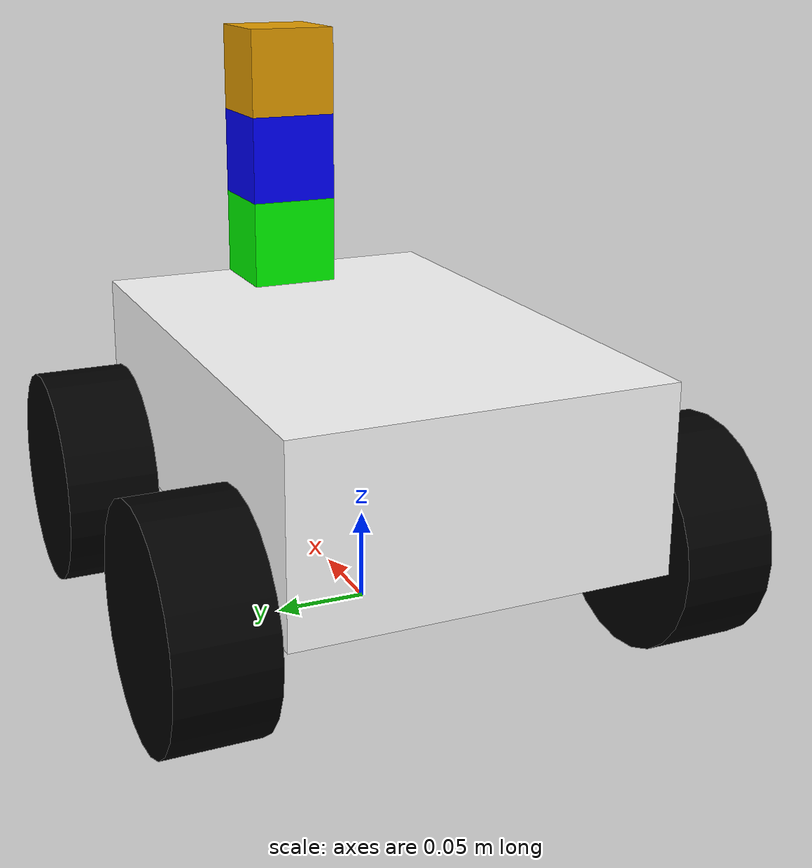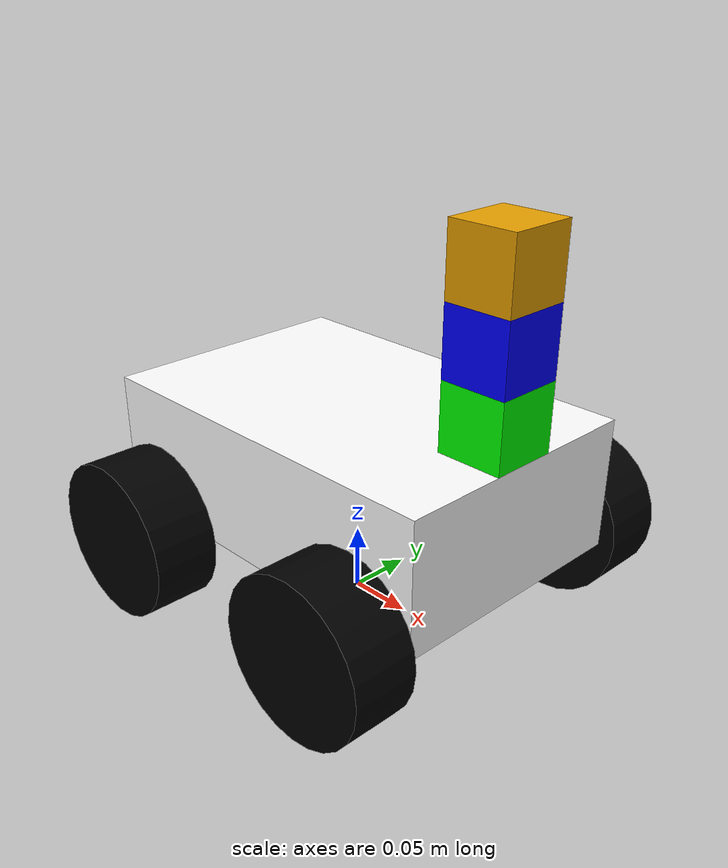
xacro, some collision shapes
<?xml version="1.0"?>

<robot name="robot" xmlns:xacro="http://www.ros.org/wiki/xacro">

	<xacro:property name="length_wheel" value="0.05" />
	<xacro:property name="radius_wheel" value="0.06" />
	<xacro:property name="camera_link" value="0.05" />
  <xacro:property name="PI" value="3.1415926"/>
	<xacro:macro name="default_inertial" params="mass">
               <inertial>
                       <mass value="${mass}" />
                       <inertia ixx="0.1" ixy="0.0"
                                ixz="0.0"
                                iyy="0.1" iyz="0.0"
                                izz="0.1" />
               </inertial>
	</xacro:macro>
	<link name="base_footprint">
   		<visual>
			<geometry>
      				<box size="0.001 0.001 0.001"/>
     			</geometry>
			<origin rpy="0 0 0" xyz="0 0 0"/>
   		</visual>
		<xacro:default_inertial mass="0.0001"/>
 	</link>

	<gazebo reference="base_footprint">
		<material>Gazebo/Green</material>
		<turnGravityOff>false</turnGravityOff>
	</gazebo>

	<joint name="base_footprint_joint" type="fixed">
    <origin xyz="0 0 0.06" />  <!-- 当前是0，应该设置为0.06 -->
    <parent link="base_footprint" />
    <child link="base_link" />
</joint>

	<link name="base_link">
   		<visual>
			<geometry>
      				<box size="0.2 .3 .1"/>
     			</geometry>
			<origin rpy="0 0 ${PI/2}" xyz="0 0 0.05"/>
			<material name="white">　　　
				<color rgba="1 1 1 1"/>
			</material>
   		</visual>
		<collision>
			<geometry>
       				<box size="0.2 .3 0.1"/>
			</geometry>
		</collision>
                <xacro:default_inertial mass="8.2"/>
 	</link>

 	<link name="wheel_1">
   		<visual>
     			<geometry>
       				<cylinder length="${length_wheel}" radius="${radius_wheel}"/>
     			</geometry>
			<origin rpy="0 0 0" xyz="0 0 0"/>
   			<material name="black">
				<color rgba="0 0 0 1"/>
			</material>
		</visual>
		<collision>
			<geometry>
       				<cylinder length="${length_wheel}" radius="${radius_wheel}"/>
			</geometry>
		</collision>
		  <mu1>0.5</mu1>
		    <mu2>0.5</mu2>
		<xacro:default_inertial mass="0.5"/>
 	</link>

 	<link name="wheel_2">
   		<visual>
     			<geometry>
       				<cylinder length="${length_wheel}" radius="${radius_wheel}"/>
     			</geometry>
			<origin rpy="0 0 0" xyz="0 0 0"/>
   			<material name="black"/>
        <color rgba="0 0 0 1"/>
   		</visual>
		<collision>
			<geometry>
       				<cylinder length="${length_wheel}" radius="${radius_wheel}"/>
			</geometry>
		</collision>
		   <mu1>0.5</mu1>
		    <mu2>0.5</mu2>
		<xacro:default_inertial mass="0.5"/>

 	</link>

 	<link name="wheel_3">
   		<visual>
     			<geometry>
       				<cylinder length="${length_wheel}" radius="${radius_wheel}"/>
     			</geometry>

			<origin rpy="0 0 0" xyz="0 0 0"/>
   			<material name="black"/>
   		</visual>
		<collision>
			<geometry>
       				<cylinder length="${length_wheel}" radius="${radius_wheel}"/>
			</geometry>
		</collision>
		 <mu1>0.5</mu1>
		    <mu2>0.5</mu2>
		<xacro:default_inertial mass="0.5"/>
 	</link>

 	<link name="wheel_4">
   		<visual>
     			<geometry>
       				<cylinder length="${length_wheel}" radius="${radius_wheel}"/>
     			</geometry>
			<origin rpy="0 0 0" xyz="0 0 0" />
   			<material name="black"/>
   		</visual>
		<collision>
			<geometry>
       				<cylinder length="${length_wheel}" radius="${radius_wheel}"/>
			</geometry>
		</collision>
		   <mu1>0.5</mu1>
		    <mu2>0.5</mu2>
		<xacro:default_inertial mass="0.5"/>

 	</link>

 <joint name="base_to_wheel1" type="continuous">
   <parent link="base_link"/>
   <child link="wheel_1"/>
   <origin rpy="${-PI/2} 0 0" xyz="0.1 0.13 0"/>
   <axis xyz="0 0 1" />
 </joint>

 <joint name="base_to_wheel2" type="continuous">
   <axis xyz="0 0 1" />
   <anchor xyz="0 0 0" />
   <limit effort="100" velocity="100" />
   <parent link="base_link"/>
   <child link="wheel_2"/>
   <origin rpy="${-PI/2} 0 0" xyz="-0.1 0.13 0"/>
</joint>

 <joint name="base_to_wheel3" type="continuous">
   <parent link="base_link"/>
   <axis xyz="0 0 1" />
   <child link="wheel_3"/>
   <origin rpy="${-PI/2} 0 0" xyz="0.1 -0.13 0"/>
 </joint>

 <joint name="base_to_wheel4" type="continuous">
   <parent link="base_link"/>
   <axis xyz="0 0 1" />
   <child link="wheel_4"/>
   <origin rpy="${-PI/2} 0 0" xyz="-0.1 -0.13 0"/>
 </joint>

 <!-- IMU joint -->
  <joint name="imu_joint" type="fixed">
    <axis xyz="0 1 0" />
    <origin xyz="0.125 0 0.125" rpy="0 0 0"/>
    <parent link="base_link"/>
    <child link="imu_link"/>
  </joint>

  <!-- IMU -->
  <link name="imu_link">
    <collision>
      <origin xyz="0 0 0" rpy="0 0 0"/>
      <geometry>
  <box size="0.05 0.05 0.05"/>
      </geometry>
    </collision>

    <visual>
      <origin xyz="0 0 0" rpy="0 0 0"/>
      <geometry>
  <box size="0.05 0.05 0.05"/>
      </geometry>
      <material name="green">
  <color rgba="0 1 0 1"/>
      </material>
    </visual>

    <inertial>
      <mass value="1e-2" />
      <origin xyz="0 0 0" rpy="0 0 0"/>
      <inertia ixx="1e-6" ixy="0" ixz="0" iyy="1e-6" iyz="0" izz="1e-6" />
    </inertial>
  </link>

     <!-- IMU -->

  <!-- Camera joint -->
  <joint name="camera_joint" type="fixed">
    <axis xyz="0 1 0" />
    <origin xyz="0.125 0 0.175" rpy="0 0 0"/>
    <parent link="base_link"/>
    <child link="camera_link"/>
  </joint>

  <!-- Camera -->
  <link name="camera_link">
    <collision>
      <origin xyz="0 0 0" rpy="0 0 0"/>
      <geometry>
	<box size="0.05 0.05 0.05"/>
      </geometry>
    </collision>

    <visual>
      <origin xyz="0 0 0" rpy="0 0 0"/>
      <geometry>
	<box size="0.05 0.05 0.05"/>
      </geometry>
      <material name="blue">
	<color rgba="0 0 1 1"/>
      </material>
    </visual>

    <inertial>
      <mass value="1e-2" />
      <origin xyz="0 0 0" rpy="0 0 0"/>
      <inertia ixx="1e-6" ixy="0" ixz="0" iyy="1e-6" iyz="0" izz="1e-6" />
    </inertial>
  </link>

     <!-- camera -->

  <!-- Hokuyo joint -->
  <joint name="hokuyo_joint" type="fixed">
    <origin xyz="0.125 0.0 0.225" rpy="0 0 0"/>
    <parent link="base_link"/>
    <axis xyz="0 1 0" />
    <child link="laser_frame"/>
  </joint>

  <!-- Hokuyo Laser -->
  <link name="laser_frame">
    <collision>
      <origin xyz="0 0 0" rpy="0 0 0"/>
      <geometry>
	<box size="0.05 0.05 0.05"/>
      </geometry>
    </collision>

    <visual>
      <origin xyz="0 0 0" rpy="0 0 0"/>
      <geometry>
        <mesh filename="package://gazebo_pkg/meshes/hokuyo.dae"/>
      </geometry>
    </visual>

    <inertial>
      <mass value="1e-2" />
      <origin xyz="0 0 0" rpy="0 0 0"/>
      <inertia ixx="1e-6" ixy="0" ixz="0" iyy="1e-6" iyz="0" izz="1e-6" />
    </inertial>
  </link>

   <!-- hokuyo -->

<!-- gazebo插件设置相关 -->

   <gazebo reference="base_link">
    <material>Gazebo/Orange</material>
  </gazebo>

 <gazebo reference="wheel_1">
        <material>Gazebo/Red</material>
 </gazebo>

 <gazebo reference="wheel_2">
        <material>Gazebo/Black</material>
 </gazebo>

 <gazebo reference="wheel_3">
        <material>Gazebo/Red</material>
 </gazebo>

 <gazebo reference="wheel_4">
        <material>Gazebo/Black</material>
 </gazebo>

  <!-- ros_control plugin -->

  <!-- camera_link -->
  <gazebo reference="camera_link">
    <material>Gazebo/Blue</material>
  </gazebo>

  <!-- hokuyo -->
  <gazebo reference="laser_frame">
    <sensor type="ray" name="head_hokuyo_sensor">
    <!-- GPU -->
      <pose>0 0 0 0 0 0</pose>
      <visualize>false</visualize>
      <update_rate>15</update_rate>
      <ray>
        <scan>
          <horizontal>
            <samples>720</samples>
            <resolution>1</resolution>
            <min_angle>-3.1415926</min_angle>
            <max_angle>3.1415926</max_angle>
          </horizontal>
        </scan>
        <range>
          <min>0.05</min>
          <max>30.0</max>
          <resolution>0.01</resolution>
        </range>
        <noise>
          <type>gaussian</type>
          <mean>0.0</mean>
          <stddev>0.01</stddev>
        </noise>
      </ray>
      <!-- GPU版本 -->
      <plugin name="gazebo_ros_head_hokuyo_controller" filename="libgazebo_ros_laser.so">
        <topicName>/scan</topicName>
        <frameName>laser_frame</frameName>
      </plugin>
    </sensor>
  </gazebo>

  <!-- 深度摄像头 -->
  <gazebo reference="camera_link">
    <sensor type="depth" name="camera_depth_sensor">
      <always_on>true</always_on>
      <update_rate>30.0</update_rate>
      <camera>
        <horizontal_fov>1.047</horizontal_fov>
        <image>
          <width>640</width>
          <height>480</height>
          <format>R8G8B8</format>
        </image>
        <clip>
          <near>0.05</near>
          <far>5.0</far>
        </clip>
      </camera>
      <plugin name="camera_depth_controller" filename="libgazebo_ros_depth_camera.so">
        <alwaysOn>true</alwaysOn>
        <updateRate>30.0</updateRate>
        <cameraName>camera</cameraName>
        <imageTopicName>image_raw</imageTopicName>
        <cameraInfoTopicName>camera_info</cameraInfoTopicName>
        <depthImageTopicName>depth/image_raw</depthImageTopicName>
        <depthImageCameraInfoTopicName>depth/camera_info</depthImageCameraInfoTopicName>
        <pointCloudTopicName>depth/points</pointCloudTopicName>
        <frameName>camera_depth_frame</frameName>  <!-- 改为camera_depth_frame -->
        <hackBaseline>0.07</hackBaseline>
        <pointCloudCutoff>0.05</pointCloudCutoff>
        <pointCloudCutoffMax>5.0</pointCloudCutoffMax>
      </plugin>
    </sensor>
  </gazebo>

  <!-- Drive controller -->
<gazebo>
  <plugin name="skid_steer_drive_controller" filename="libgazebo_ros_skid_steer_drive.so">
    <alwaysOn>true</alwaysOn>
    <updateRate>100.0</updateRate>
    <robotNamespace>/</robotNamespace>
    <leftFrontJoint>base_to_wheel1</leftFrontJoint>
    <rightFrontJoint>base_to_wheel3</rightFrontJoint>
    <leftRearJoint>base_to_wheel2</leftRearJoint>
    <rightRearJoint>base_to_wheel4</rightRearJoint>
    <wheelSeparation>0.26</wheelSeparation>
    <wheelDiameter>0.12</wheelDiameter>
    <torque>2</torque>
    <commandTopic>cmd_vel</commandTopic>
    <odometryTopic>odom</odometryTopic>
    <odometryFrame>odom</odometryFrame>
    <robotBaseFrame>base_footprint</robotBaseFrame>  <!-- 改为base_footprint -->
    <broadcastTF>1</broadcastTF>
  </plugin>
</gazebo>

<!-- imu控制 -->

   <gazebo reference="imu_link">
        <material>Gazebo/Orange</material>
        <gravity>true</gravity>
        <sensor name="imu_sensor" type="imu">
            <always_on>true</always_on>
            <update_rate>100</update_rate>
            <visualize>true</visualize>
            <topic>__default_topic__</topic>
            <plugin filename="libgazebo_ros_imu_sensor.so" name="imu_plugin">
                <topicName>imu</topicName>
                <bodyName>imu_link</bodyName>
                <updateRateHZ>100.0</updateRateHZ>
                <gaussianNoise>0.0</gaussianNoise>
                <xyzOffset>0 0 0</xyzOffset>
                <rpyOffset>0 0 0</rpyOffset>
                <frameName>imu_link</frameName>
            </plugin>
            <pose>0 0 0 0 0 0</pose>
        </sensor>
    </gazebo>

<!-- gazebo插件设置相关结束 -->

<!-- 原来的深度摄像头代码已被整合到camera_link中 -->

<!-- Camera depth frame joint -->
<joint name="camera_depth_joint" type="fixed">
    <origin xyz="0 0 0" rpy="0 0 0"/>
    <parent link="camera_link"/>
    <child link="camera_depth_frame"/>
</joint>

<!-- Camera depth frame -->
<link name="camera_depth_frame">
    <inertial>
        <mass value="1e-5" />
        <origin xyz="0 0 0" rpy="0 0 0"/>
        <inertia ixx="1e-6" ixy="0" ixz="0" iyy="1e-6" iyz="0" izz="1e-6" />
    </inertial>
</link>

</robot>
